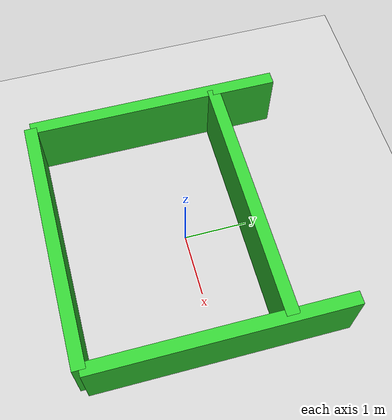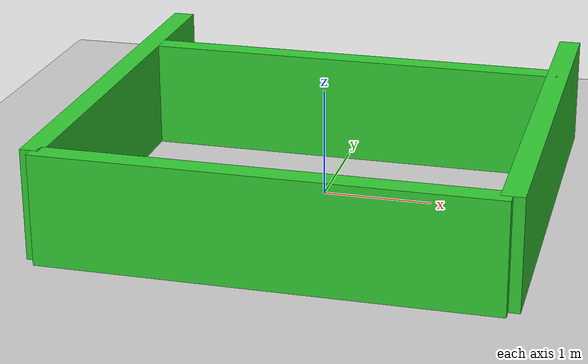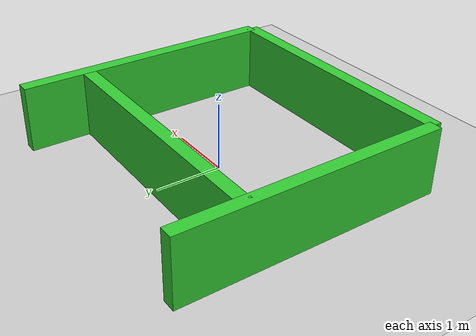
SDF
<?xml version="1.0" ?>
<sdf version="1.8">
  <world name="lidarino_world">
    <plugin filename="gz-sim-physics-system" name="gz::sim::systems::Physics"/>
    <plugin filename="gz-sim-scene-broadcaster-system" name="gz::sim::systems::SceneBroadcaster"/>
    <plugin filename="gz-sim-user-commands-system" name="gz::sim::systems::UserCommands"/>

    <plugin filename="gz-sim-sensors-system" name="gz::sim::systems::Sensors">
      <render_engine>ogre2</render_engine>
    </plugin>

    <light type="directional" name="sun">
      <cast_shadows>true</cast_shadows>
      <pose>0 0 10 0 0 0</pose>
      <diffuse>0.8 0.8 0.8 1</diffuse>
      <specular>0.2 0.2 0.2 1</specular>
      <direction>-0.5 0.1 -0.9</direction>
    </light>

    <model name="ground_plane">
      <static>true</static>
      <link name="link">
        <collision name="collision">
          <geometry>
            <plane>
              <normal>0 0 1</normal>
              <size>100 100</size>
            </plane>
          </geometry>
        </collision>
        <visual name="visual">
          <geometry>
            <plane>
              <normal>0 0 1</normal>
              <size>100 100</size>
            </plane>
          </geometry>
          <material>
            <ambient>0.8 0.8 0.8 1</ambient>
            <diffuse>0.8 0.8 0.8 1</diffuse>
          </material>
        </visual>
      </link>
    </model>
    <model name="wall_north">
      <static>true</static>
      <pose>2 0 0.5 0 0 0</pose> <link name="link">
        <collision name="collision">
          <geometry><box><size>0.2 4 1</size></box></geometry>
        </collision>
        <visual name="visual">
          <geometry><box><size>0.2 4 1</size></box></geometry>
          <material>
            <ambient>0.2 0.8 0.2 1</ambient> </material>
        </visual>
      </link>
    </model>
    <model name="wall_south">
      <static>true</static>
      <pose>-2 0 0.5 0 0 0</pose> <link name="link">
        <collision name="collision">
          <geometry><box><size>0.2 4 1</size></box></geometry>
        </collision>
        <visual name="visual">
          <geometry><box><size>0.2 4 1</size></box></geometry>
          <material>
            <ambient>0.2 0.8 0.2 1</ambient> </material>
        </visual>
      </link>
    </model>
    <model name="wall_west">
      <static>true</static>
      <pose>0 -2 0.5 0 0 0</pose> <link name="link">
        <collision name="collision">
          <geometry><box><size>4 0.2 1</size></box></geometry>
        </collision>
        <visual name="visual">
          <geometry><box><size>4 0.2 1</size></box></geometry>
          <material>
            <ambient>0.2 0.8 0.2 1</ambient> </material>
        </visual>
      </link>
    </model>
    <model name="wall_east">
      <static>true</static>
      <pose>0 1 0.5 0 0 0</pose> <link name="link">
        <collision name="collision">
          <geometry><box><size>4 0.2 1</size></box></geometry>
        </collision>
        <visual name="visual">
          <geometry><box><size>4 0.2 1</size></box></geometry>
          <material>
            <ambient>0.2 0.8 0.2 1</ambient> </material>
        </visual>
      </link>
    </model>
  </world>
</sdf>
